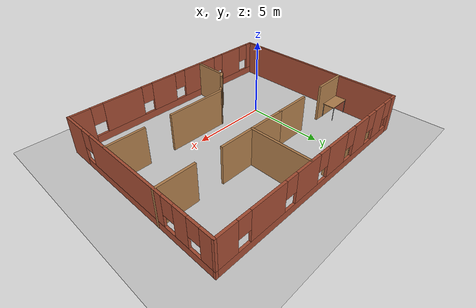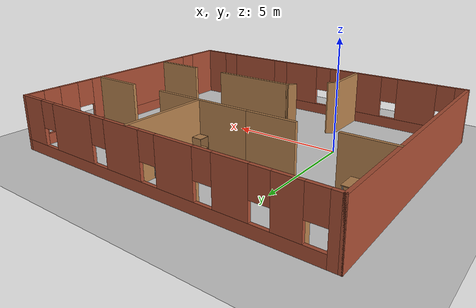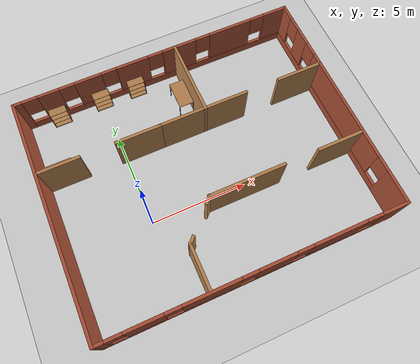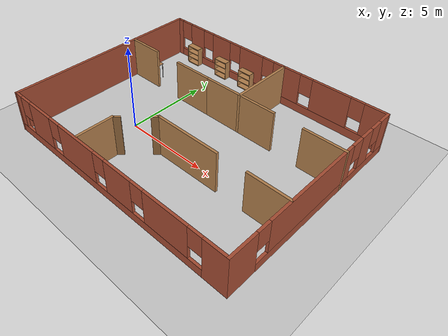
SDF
<sdf version="1.6">
 <world name="default">
  <model name="ground_plane">
   <static>1</static>
   <link name="link">
    <collision name="collision">
     <geometry><plane><normal>0 0 1</normal><size>100 100</size></plane></geometry>
     <surface><friction><ode><mu>100</mu><mu2>50</mu2></ode></friction></surface>
    </collision>
    <visual name="visual">
     <cast_shadows>0</cast_shadows>
     <geometry><plane><normal>0 0 1</normal><size>100 100</size></plane></geometry>
     <material>
      <script><uri>file://media/materials/scripts/gazebo.material</uri><name>Gazebo/Grey</name></script>
     </material>
    </visual>
   </link>
  </model>
  <model name="cabinet">
   <static>1</static>
   <link name="cabinet_bottom_plate">
    <inertial>
     <pose>0 0 -1 0 -0 0</pose>
     <inertia><ixx>2.05</ixx><ixy>0</ixy><ixz>0</ixz><iyy>2.05</iyy><iyz>0</iyz><izz>2.05</izz></inertia>
     <mass>25</mass>
    </inertial>
    <collision name="cabinet_bottom_plate_geom">
     <pose>0 0 0.01 0 -0 0</pose>
     <geometry><box><size>0.45 0.45 0.02</size></box></geometry>
    </collision>
    <visual name="cabinet_bottom_plate_geom_visual">
     <pose>0 0 0.01 0 -0 0</pose>
     <geometry><box><size>0.45 0.45 0.02</size></box></geometry>
     <material>
      <script><uri>file://media/materials/scripts/gazebo.material</uri><name>Gazebo/Wood</name></script>
     </material>
    </visual>
    <collision name="cabinet_bottom_plate_geom_cabinet_back_plate">
     <pose>0.235 0 0.51 0 -0 0</pose>
     <geometry><box><size>0.02 0.45 1.02</size></box></geometry>
    </collision>
    <visual name="cabinet_bottom_plate_geom_cabinet_back_plate_visual">
     <pose>0.235 0 0.51 0 -0 0</pose>
     <geometry><box><size>0.02 0.45 1.02</size></box></geometry>
     <material>
      <script><uri>file://media/materials/scripts/gazebo.material</uri><name>Gazebo/Wood</name></script>
     </material>
    </visual>
    <collision name="cabinet_bottom_plate_geom_cabinet_left_plate">
     <pose>0 0.235 0.51 0 -0 0</pose>
     <geometry><box><size>0.45 0.02 1.02</size></box></geometry>
    </collision>
    <visual name="cabinet_bottom_plate_geom_cabinet_left_plate_visual">
     <pose>0 0.235 0.51 0 -0 0</pose>
     <geometry><box><size>0.45 0.02 1.02</size></box></geometry>
     <material>
      <script><uri>file://media/materials/scripts/gazebo.material</uri><name>Gazebo/Wood</name></script>
     </material>
    </visual>
    <collision name="cabinet_bottom_plate_geom_cabinet_middle_plate">
     <pose>0 0 0.51 0 -0 0</pose>
     <geometry><box><size>0.45 0.45 0.02</size></box></geometry>
    </collision>
    <visual name="cabinet_bottom_plate_geom_cabinet_middle_plate_visual">
     <pose>0 0 0.51 0 -0 0</pose>
     <geometry><box><size>0.45 0.45 0.02</size></box></geometry>
     <material>
      <script><uri>file://media/materials/scripts/gazebo.material</uri><name>Gazebo/Wood</name></script>
     </material>
    </visual>
    <collision name="cabinet_bottom_plate_geom_cabinet_right_plate">
     <pose>0 -0.235 0.51 0 -0 0</pose>
     <geometry><box><size>0.45 0.02 1.02</size></box></geometry>
    </collision>
    <visual name="cabinet_bottom_plate_geom_cabinet_right_plate_visual">
     <pose>0 -0.235 0.51 0 -0 0</pose>
     <geometry><box><size>0.45 0.02 1.02</size></box></geometry>
     <material>
      <script><uri>file://media/materials/scripts/gazebo.material</uri><name>Gazebo/Wood</name></script>
     </material>
    </visual>
    <collision name="cabinet_bottom_plate_geom_cabinet_top_plate">
     <pose>0 0 1.01 0 -0 0</pose>
     <geometry><box><size>0.45 0.45 0.02</size></box></geometry>
    </collision>
    <visual name="cabinet_bottom_plate_geom_cabinet_top_plate_visual">
     <pose>0 0 1.01 0 -0 0</pose>
     <geometry><box><size>0.45 0.45 0.02</size></box></geometry>
     <material>
      <script><uri>file://media/materials/scripts/gazebo.material</uri><name>Gazebo/Wood</name></script>
     </material>
    </visual>
   </link>
   <pose>4.13941 3.99737 0 0 -0 0</pose>
  </model>
  <model name="table_1_clone_0">
   <static>1</static>
   <link name="link">
    <collision name="surface">
     <pose>0 0 1 0 -0 0</pose>
     <geometry><box><size>1.5 0.8 0.03</size></box></geometry>
     <surface><friction><ode><mu>0.6</mu><mu2>0.6</mu2></ode></friction></surface>
    </collision>
    <visual name="visual1">
     <pose>0 0 1 0 -0 0</pose>
     <geometry><box><size>1.5 0.8 0.03</size></box></geometry>
     <material>
      <script><uri>file://media/materials/scripts/gazebo.material</uri><name>Gazebo/Wood</name></script>
     </material>
    </visual>
    <collision name="front_left_leg">
     <pose>0.68 0.38 0.5 0 -0 0</pose>
     <geometry><cylinder><radius>0.02</radius><length>1</length></cylinder></geometry>
    </collision>
    <visual name="front_left_leg">
     <pose>0.68 0.38 0.5 0 -0 0</pose>
     <geometry><cylinder><radius>0.02</radius><length>1</length></cylinder></geometry>
     <material>
      <script><uri>file://media/materials/scripts/gazebo.material</uri><name>Gazebo/Grey</name></script>
     </material>
    </visual>
    <collision name="front_right_leg">
     <pose>0.68 -0.38 0.5 0 -0 0</pose>
     <geometry><cylinder><radius>0.02</radius><length>1</length></cylinder></geometry>
    </collision>
    <visual name="front_right_leg">
     <pose>0.68 -0.38 0.5 0 -0 0</pose>
     <geometry><cylinder><radius>0.02</radius><length>1</length></cylinder></geometry>
     <material>
      <script><uri>file://media/materials/scripts/gazebo.material</uri><name>Gazebo/Grey</name></script>
     </material>
    </visual>
    <collision name="back_right_leg">
     <pose>-0.68 -0.38 0.5 0 -0 0</pose>
     <geometry><cylinder><radius>0.02</radius><length>1</length></cylinder></geometry>
    </collision>
    <visual name="back_right_leg">
     <pose>-0.68 -0.38 0.5 0 -0 0</pose>
     <geometry><cylinder><radius>0.02</radius><length>1</length></cylinder></geometry>
     <material>
      <script><uri>file://media/materials/scripts/gazebo.material</uri><name>Gazebo/Grey</name></script>
     </material>
    </visual>
    <collision name="back_left_leg">
     <pose>-0.68 0.38 0.5 0 -0 0</pose>
     <geometry><cylinder><radius>0.02</radius><length>1</length></cylinder></geometry>
    </collision>
    <visual name="back_left_leg">
     <pose>-0.68 0.38 0.5 0 -0 0</pose>
     <geometry><cylinder><radius>0.02</radius><length>1</length></cylinder></geometry>
     <material>
      <script><uri>file://media/materials/scripts/gazebo.material</uri><name>Gazebo/Grey</name></script>
     </material>
    </visual>
   </link>
   <pose>-3.29722 4.13533 0 0 -0 0</pose>
  </model>
  <model name="bookshelf">
   <static>1</static>
   <link name="link">
    <inertial><mass>1</mass></inertial>
    <collision name="back">
     <pose>0 0.005 0.6 0 -0 0</pose>
     <geometry><box><size>0.9 0.01 1.2</size></box></geometry>
    </collision>
    <visual name="visual1">
     <pose>0 0.005 0.6 0 -0 0</pose>
     <geometry><box><size>0.9 0.01 1.2</size></box></geometry>
     <material>
      <script><uri>file://media/materials/scripts/gazebo.material</uri><name>Gazebo/Wood</name></script>
     </material>
    </visual>
    <collision name="left_side">
     <pose>0.45 -0.195 0.6 0 -0 0</pose>
     <geometry><box><size>0.02 0.4 1.2</size></box></geometry>
    </collision>
    <visual name="visual2">
     <pose>0.45 -0.195 0.6 0 -0 0</pose>
     <geometry><box><size>0.02 0.4 1.2</size></box></geometry>
     <material>
      <script><uri>file://media/materials/scripts/gazebo.material</uri><name>Gazebo/Wood</name></script>
     </material>
    </visual>
    <collision name="right_side">
     <pose>-0.45 -0.195 0.6 0 -0 0</pose>
     <geometry><box><size>0.02 0.4 1.2</size></box></geometry>
    </collision>
    <visual name="visual3">
     <pose>-0.45 -0.195 0.6 0 -0 0</pose>
     <geometry><box><size>0.02 0.4 1.2</size></box></geometry>
     <material>
      <script><uri>file://media/materials/scripts/gazebo.material</uri><name>Gazebo/Wood</name></script>
     </material>
    </visual>
    <collision name="bottom">
     <pose>0 -0.195 0.03 0 -0 0</pose>
     <geometry><box><size>0.88 0.4 0.06</size></box></geometry>
    </collision>
    <visual name="visual4">
     <pose>0 -0.195 0.03 0 -0 0</pose>
     <geometry><box><size>0.88 0.4 0.06</size></box></geometry>
     <material>
      <script><uri>file://media/materials/scripts/gazebo.material</uri><name>Gazebo/Wood</name></script>
     </material>
    </visual>
    <collision name="top">
     <pose>0 -0.195 1.19 0 -0 0</pose>
     <geometry><box><size>0.88 0.4 0.02</size></box></geometry>
    </collision>
    <visual name="visual5">
     <pose>0 -0.195 1.19 0 -0 0</pose>
     <geometry><box><size>0.88 0.4 0.02</size></box></geometry>
     <material>
      <script><uri>file://media/materials/scripts/gazebo.material</uri><name>Gazebo/Wood</name></script>
     </material>
    </visual>
    <collision name="low_shelf">
     <pose>0 -0.195 0.43 0 -0 0</pose>
     <geometry><box><size>0.88 0.4 0.02</size></box></geometry>
    </collision>
    <visual name="visual6">
     <pose>0 -0.195 0.43 0 -0 0</pose>
     <geometry><box><size>0.88 0.4 0.02</size></box></geometry>
     <material>
      <script><uri>file://media/materials/scripts/gazebo.material</uri><name>Gazebo/Wood</name></script>
     </material>
    </visual>
    <collision name="high_shelf">
     <pose>0 -0.195 0.8 0 -0 0</pose>
     <geometry><box><size>0.88 0.4 0.02</size></box></geometry>
    </collision>
    <visual name="visual7">
     <pose>0 -0.195 0.8 0 -0 0</pose>
     <geometry><box><size>0.88 0.4 0.02</size></box></geometry>
     <material>
      <script><uri>file://media/materials/scripts/gazebo.material</uri><name>Gazebo/Wood</name></script>
     </material>
    </visual>
   </link>
   <pose>1.95532 7.44625 0 0 -0 0</pose>
  </model>
  <model name="bookshelf_0">
   <static>1</static>
   <link name="link">
    <inertial><mass>1</mass></inertial>
    <collision name="back">
     <pose>0 0.005 0.6 0 -0 0</pose>
     <geometry><box><size>0.9 0.01 1.2</size></box></geometry>
    </collision>
    <visual name="visual1">
     <pose>0 0.005 0.6 0 -0 0</pose>
     <geometry><box><size>0.9 0.01 1.2</size></box></geometry>
     <material>
      <script><uri>file://media/materials/scripts/gazebo.material</uri><name>Gazebo/Wood</name></script>
     </material>
    </visual>
    <collision name="left_side">
     <pose>0.45 -0.195 0.6 0 -0 0</pose>
     <geometry><box><size>0.02 0.4 1.2</size></box></geometry>
    </collision>
    <visual name="visual2">
     <pose>0.45 -0.195 0.6 0 -0 0</pose>
     <geometry><box><size>0.02 0.4 1.2</size></box></geometry>
     <material>
      <script><uri>file://media/materials/scripts/gazebo.material</uri><name>Gazebo/Wood</name></script>
     </material>
    </visual>
    <collision name="right_side">
     <pose>-0.45 -0.195 0.6 0 -0 0</pose>
     <geometry><box><size>0.02 0.4 1.2</size></box></geometry>
    </collision>
    <visual name="visual3">
     <pose>-0.45 -0.195 0.6 0 -0 0</pose>
     <geometry><box><size>0.02 0.4 1.2</size></box></geometry>
     <material>
      <script><uri>file://media/materials/scripts/gazebo.material</uri><name>Gazebo/Wood</name></script>
     </material>
    </visual>
    <collision name="bottom">
     <pose>0 -0.195 0.03 0 -0 0</pose>
     <geometry><box><size>0.88 0.4 0.06</size></box></geometry>
    </collision>
    <visual name="visual4">
     <pose>0 -0.195 0.03 0 -0 0</pose>
     <geometry><box><size>0.88 0.4 0.06</size></box></geometry>
     <material>
      <script><uri>file://media/materials/scripts/gazebo.material</uri><name>Gazebo/Wood</name></script>
     </material>
    </visual>
    <collision name="top">
     <pose>0 -0.195 1.19 0 -0 0</pose>
     <geometry><box><size>0.88 0.4 0.02</size></box></geometry>
    </collision>
    <visual name="visual5">
     <pose>0 -0.195 1.19 0 -0 0</pose>
     <geometry><box><size>0.88 0.4 0.02</size></box></geometry>
     <material>
      <script><uri>file://media/materials/scripts/gazebo.material</uri><name>Gazebo/Wood</name></script>
     </material>
    </visual>
    <collision name="low_shelf">
     <pose>0 -0.195 0.43 0 -0 0</pose>
     <geometry><box><size>0.88 0.4 0.02</size></box></geometry>
    </collision>
    <visual name="visual6">
     <pose>0 -0.195 0.43 0 -0 0</pose>
     <geometry><box><size>0.88 0.4 0.02</size></box></geometry>
     <material>
      <script><uri>file://media/materials/scripts/gazebo.material</uri><name>Gazebo/Wood</name></script>
     </material>
    </visual>
    <collision name="high_shelf">
     <pose>0 -0.195 0.8 0 -0 0</pose>
     <geometry><box><size>0.88 0.4 0.02</size></box></geometry>
    </collision>
    <visual name="visual7">
     <pose>0 -0.195 0.8 0 -0 0</pose>
     <geometry><box><size>0.88 0.4 0.02</size></box></geometry>
     <material>
      <script><uri>file://media/materials/scripts/gazebo.material</uri><name>Gazebo/Wood</name></script>
     </material>
    </visual>
   </link>
   <pose>-2.36809 7.42692 0 0 -0 0</pose>
  </model>
  <model name="bookshelf_1">
   <static>1</static>
   <link name="link">
    <inertial><mass>1</mass></inertial>
    <collision name="back">
     <pose>0 0.005 0.6 0 -0 0</pose>
     <geometry><box><size>0.9 0.01 1.2</size></box></geometry>
    </collision>
    <visual name="visual1">
     <pose>0 0.005 0.6 0 -0 0</pose>
     <geometry><box><size>0.9 0.01 1.2</size></box></geometry>
     <material>
      <script><uri>file://media/materials/scripts/gazebo.material</uri><name>Gazebo/Wood</name></script>
     </material>
    </visual>
    <collision name="left_side">
     <pose>0.45 -0.195 0.6 0 -0 0</pose>
     <geometry><box><size>0.02 0.4 1.2</size></box></geometry>
    </collision>
    <visual name="visual2">
     <pose>0.45 -0.195 0.6 0 -0 0</pose>
     <geometry><box><size>0.02 0.4 1.2</size></box></geometry>
     <material>
      <script><uri>file://media/materials/scripts/gazebo.material</uri><name>Gazebo/Wood</name></script>
     </material>
    </visual>
    <collision name="right_side">
     <pose>-0.45 -0.195 0.6 0 -0 0</pose>
     <geometry><box><size>0.02 0.4 1.2</size></box></geometry>
    </collision>
    <visual name="visual3">
     <pose>-0.45 -0.195 0.6 0 -0 0</pose>
     <geometry><box><size>0.02 0.4 1.2</size></box></geometry>
     <material>
      <script><uri>file://media/materials/scripts/gazebo.material</uri><name>Gazebo/Wood</name></script>
     </material>
    </visual>
    <collision name="bottom">
     <pose>0 -0.195 0.03 0 -0 0</pose>
     <geometry><box><size>0.88 0.4 0.06</size></box></geometry>
    </collision>
    <visual name="visual4">
     <pose>0 -0.195 0.03 0 -0 0</pose>
     <geometry><box><size>0.88 0.4 0.06</size></box></geometry>
     <material>
      <script><uri>file://media/materials/scripts/gazebo.material</uri><name>Gazebo/Wood</name></script>
     </material>
    </visual>
    <collision name="top">
     <pose>0 -0.195 1.19 0 -0 0</pose>
     <geometry><box><size>0.88 0.4 0.02</size></box></geometry>
    </collision>
    <visual name="visual5">
     <pose>0 -0.195 1.19 0 -0 0</pose>
     <geometry><box><size>0.88 0.4 0.02</size></box></geometry>
     <material>
      <script><uri>file://media/materials/scripts/gazebo.material</uri><name>Gazebo/Wood</name></script>
     </material>
    </visual>
    <collision name="low_shelf">
     <pose>0 -0.195 0.43 0 -0 0</pose>
     <geometry><box><size>0.88 0.4 0.02</size></box></geometry>
    </collision>
    <visual name="visual6">
     <pose>0 -0.195 0.43 0 -0 0</pose>
     <geometry><box><size>0.88 0.4 0.02</size></box></geometry>
     <material>
      <script><uri>file://media/materials/scripts/gazebo.material</uri><name>Gazebo/Wood</name></script>
     </material>
    </visual>
    <collision name="high_shelf">
     <pose>0 -0.195 0.8 0 -0 0</pose>
     <geometry><box><size>0.88 0.4 0.02</size></box></geometry>
    </collision>
    <visual name="visual7">
     <pose>0 -0.195 0.8 0 -0 0</pose>
     <geometry><box><size>0.88 0.4 0.02</size></box></geometry>
     <material>
      <script><uri>file://media/materials/scripts/gazebo.material</uri><name>Gazebo/Wood</name></script>
     </material>
    </visual>
   </link>
   <pose>0.00866 7.44855 0 0 -0 0</pose>
  </model>
  <model name="table_2">
   <static>1</static>
   <link name="link">
    <collision name="surface">
     <pose>0 0 1 0 -0 0</pose>
     <geometry><box><size>1.5 0.8 0.03</size></box></geometry>
     <surface><friction><ode><mu>0.6</mu><mu2>0.6</mu2></ode></friction></surface>
    </collision>
    <visual name="visual1">
     <pose>0 0 1 0 -0 0</pose>
     <geometry><box><size>1.5 0.8 0.03</size></box></geometry>
     <material>
      <script><uri>file://media/materials/scripts/gazebo.material</uri><name>Gazebo/Wood</name></script>
     </material>
    </visual>
    <collision name="front_left_leg">
     <pose>0.68 0.38 0.5 0 -0 0</pose>
     <geometry><cylinder><radius>0.02</radius><length>1</length></cylinder></geometry>
    </collision>
    <visual name="front_left_leg">
     <pose>0.68 0.38 0.5 0 -0 0</pose>
     <geometry><cylinder><radius>0.02</radius><length>1</length></cylinder></geometry>
     <material>
      <script><uri>file://media/materials/scripts/gazebo.material</uri><name>Gazebo/Grey</name></script>
     </material>
    </visual>
    <collision name="front_right_leg">
     <pose>0.68 -0.38 0.5 0 -0 0</pose>
     <geometry><cylinder><radius>0.02</radius><length>1</length></cylinder></geometry>
    </collision>
    <visual name="front_right_leg">
     <pose>0.68 -0.38 0.5 0 -0 0</pose>
     <geometry><cylinder><radius>0.02</radius><length>1</length></cylinder></geometry>
     <material>
      <script><uri>file://media/materials/scripts/gazebo.material</uri><name>Gazebo/Grey</name></script>
     </material>
    </visual>
    <collision name="back_right_leg">
     <pose>-0.68 -0.38 0.5 0 -0 0</pose>
     <geometry><cylinder><radius>0.02</radius><length>1</length></cylinder></geometry>
    </collision>
    <visual name="back_right_leg">
     <pose>-0.68 -0.38 0.5 0 -0 0</pose>
     <geometry><cylinder><radius>0.02</radius><length>1</length></cylinder></geometry>
     <material>
      <script><uri>file://media/materials/scripts/gazebo.material</uri><name>Gazebo/Grey</name></script>
     </material>
    </visual>
    <collision name="back_left_leg">
     <pose>-0.68 0.38 0.5 0 -0 0</pose>
     <geometry><cylinder><radius>0.02</radius><length>1</length></cylinder></geometry>
    </collision>
    <visual name="back_left_leg">
     <pose>-0.68 0.38 0.5 0 -0 0</pose>
     <geometry><cylinder><radius>0.02</radius><length>1</length></cylinder></geometry>
     <material>
      <script><uri>file://media/materials/scripts/gazebo.material</uri><name>Gazebo/Grey</name></script>
     </material>
    </visual>
   </link>
   <pose>3.97863 5.70643 0 0 0 -1.57312</pose>
  </model>
  <model name="friendly_office_0">
   <pose>3.35258 1.55482 0 0 -0 0</pose>
   <link name="Wall_58">
    <pose>7.49817 0 0 0 -0 1.5708</pose>
    <visual name="Wall_58_Visual_0">
     <pose>-5.21559 0 1.25 0 -0 0</pose>
     <geometry><box><size>1.71883 0.15 2.5</size></box></geometry>
     <material>
      <script><uri>file://media/materials/scripts/gazebo.material</uri><name>Gazebo/Bricks</name></script>
      <ambient>1 1 1 1</ambient>
     </material>
     <meta><layer>0</layer></meta>
    </visual>
    <collision name="Wall_58_Collision_0">
     <geometry><box><size>1.71883 0.15 2.5</size></box></geometry>
     <pose>-5.21559 0 1.25 0 -0 0</pose>
    </collision>
    <visual name="Wall_58_Visual_1">
     <pose>0.859412 0 0.25 0 -0 0</pose>
     <geometry><box><size>10.4312 0.15 0.5</size></box></geometry>
     <material>
      <script><uri>file://media/materials/scripts/gazebo.material</uri><name>Gazebo/Bricks</name></script>
      <ambient>1 1 1 1</ambient>
     </material>
     <meta><layer>0</layer></meta>
    </visual>
    <collision name="Wall_58_Collision_1">
     <geometry><box><size>10.4312 0.15 0.5</size></box></geometry>
     <pose>0.859412 0 0.25 0 -0 0</pose>
    </collision>
    <visual name="Wall_58_Visual_2">
     <pose>-0.445313 0 1.5 0 -0 0</pose>
     <geometry><box><size>6.22173 0.15 2</size></box></geometry>
     <material>
      <script><uri>file://media/materials/scripts/gazebo.material</uri><name>Gazebo/Bricks</name></script>
      <ambient>1 1 1 1</ambient>
     </material>
     <meta><layer>0</layer></meta>
    </visual>
    <collision name="Wall_58_Collision_2">
     <geometry><box><size>6.22173 0.15 2</size></box></geometry>
     <pose>-0.445313 0 1.5 0 -0 0</pose>
    </collision>
    <visual name="Wall_58_Visual_3">
     <pose>3.92645 0 1.5 0 -0 0</pose>
     <geometry><box><size>0.921802 0.15 2</size></box></geometry>
     <material>
      <script><uri>file://media/materials/scripts/gazebo.material</uri><name>Gazebo/Bricks</name></script>
      <ambient>1 1 1 1</ambient>
     </material>
     <meta><layer>0</layer></meta>
    </visual>
    <collision name="Wall_58_Collision_3">
     <geometry><box><size>0.921802 0.15 2</size></box></geometry>
     <pose>3.92645 0 1.5 0 -0 0</pose>
    </collision>
    <visual name="Wall_58_Visual_4">
     <pose>5.63118 0 1.5 0 -0 0</pose>
     <geometry><box><size>0.887648 0.15 2</size></box></geometry>
     <material>
      <script><uri>file://media/materials/scripts/gazebo.material</uri><name>Gazebo/Bricks</name></script>
      <ambient>1 1 1 1</ambient>
     </material>
     <meta><layer>0</layer></meta>
    </visual>
    <collision name="Wall_58_Collision_4">
     <geometry><box><size>0.887648 0.15 2</size></box></geometry>
     <pose>5.63118 0 1.5 0 -0 0</pose>
    </collision>
    <visual name="Wall_58_Visual_5">
     <pose>-3.95617 0 1.9 0 -0 0</pose>
     <geometry><box><size>0.8 0.15 1.2</size></box></geometry>
     <material>
      <script><uri>file://media/materials/scripts/gazebo.material</uri><name>Gazebo/Bricks</name></script>
      <ambient>1 1 1 1</ambient>
     </material>
     <meta><layer>0</layer></meta>
    </visual>
    <collision name="Wall_58_Collision_5">
     <geometry><box><size>0.8 0.15 1.2</size></box></geometry>
     <pose>-3.95617 0 1.9 0 -0 0</pose>
    </collision>
    <visual name="Wall_58_Visual_6">
     <pose>3.06555 0 1.9 0 -0 0</pose>
     <geometry><box><size>0.8 0.15 1.2</size></box></geometry>
     <material>
      <script><uri>file://media/materials/scripts/gazebo.material</uri><name>Gazebo/Bricks</name></script>
      <ambient>1 1 1 1</ambient>
     </material>
     <meta><layer>0</layer></meta>
    </visual>
    <collision name="Wall_58_Collision_6">
     <geometry><box><size>0.8 0.15 1.2</size></box></geometry>
     <pose>3.06555 0 1.9 0 -0 0</pose>
    </collision>
    <visual name="Wall_58_Visual_7">
     <pose>4.78735 0 1.9 0 -0 0</pose>
     <geometry><box><size>0.8 0.15 1.2</size></box></geometry>
     <material>
      <script><uri>file://media/materials/scripts/gazebo.material</uri><name>Gazebo/Bricks</name></script>
      <ambient>1 1 1 1</ambient>
     </material>
     <meta><layer>0</layer></meta>
    </visual>
    <collision name="Wall_58_Collision_7">
     <geometry><box><size>0.8 0.15 1.2</size></box></geometry>
     <pose>4.78735 0 1.9 0 -0 0</pose>
    </collision>
   </link>
   <link name="Wall_60">
    <pose>-0.001831 -6 0 0 -0 3.14159</pose>
    <visual name="Wall_60_Visual_0">
     <pose>-6.87725 0 1.25 0 -0 0</pose>
     <geometry><box><size>1.39549 0.15 2.5</size></box></geometry>
     <material>
      <script><uri>file://media/materials/scripts/gazebo.material</uri><name>Gazebo/Bricks</name></script>
      <ambient>1 1 1 1</ambient>
     </material>
     <meta><layer>0</layer></meta>
    </visual>
    <collision name="Wall_60_Collision_0">
     <geometry><box><size>1.39549 0.15 2.5</size></box></geometry>
     <pose>-6.87725 0 1.25 0 -0 0</pose>
    </collision>
    <visual name="Wall_60_Visual_1">
     <pose>0.697747 0 0.25 0 -0 0</pose>
     <geometry><box><size>13.7545 0.15 0.5</size></box></geometry>
     <material>
      <script><uri>file://media/materials/scripts/gazebo.material</uri><name>Gazebo/Bricks</name></script>
      <ambient>1 1 1 1</ambient>
     </material>
     <meta><layer>0</layer></meta>
    </visual>
    <collision name="Wall_60_Collision_1">
     <geometry><box><size>13.7545 0.15 0.5</size></box></geometry>
     <pose>0.697747 0 0.25 0 -0 0</pose>
    </collision>
    <visual name="Wall_60_Visual_2">
     <pose>-4.0308 0 1.5 0 -0 0</pose>
     <geometry><box><size>2.69741 0.15 2</size></box></geometry>
     <material>
      <script><uri>file://media/materials/scripts/gazebo.material</uri><name>Gazebo/Bricks</name></script>
      <ambient>1 1 1 1</ambient>
     </material>
     <meta><layer>0</layer></meta>
    </visual>
    <collision name="Wall_60_Collision_2">
     <geometry><box><size>2.69741 0.15 2</size></box></geometry>
     <pose>-4.0308 0 1.5 0 -0 0</pose>
    </collision>
    <visual name="Wall_60_Visual_3">
     <pose>-0.950389 0 1.5 0 -0 0</pose>
     <geometry><box><size>1.86341 0.15 2</size></box></geometry>
     <material>
      <script><uri>file://media/materials/scripts/gazebo.material</uri><name>Gazebo/Bricks</name></script>
      <ambient>1 1 1 1</ambient>
     </material>
     <meta><layer>0</layer></meta>
    </visual>
    <collision name="Wall_60_Collision_3">
     <geometry><box><size>1.86341 0.15 2</size></box></geometry>
     <pose>-0.950389 0 1.5 0 -0 0</pose>
    </collision>
    <visual name="Wall_60_Visual_4">
     <pose>2.17038 0 1.5 0 -0 0</pose>
     <geometry><box><size>2.77812 0.15 2</size></box></geometry>
     <material>
      <script><uri>file://media/materials/scripts/gazebo.material</uri><name>Gazebo/Bricks</name></script>
      <ambient>1 1 1 1</ambient>
     </material>
     <meta><layer>0</layer></meta>
    </visual>
    <collision name="Wall_60_Collision_4">
     <geometry><box><size>2.77812 0.15 2</size></box></geometry>
     <pose>2.17038 0 1.5 0 -0 0</pose>
    </collision>
    <visual name="Wall_60_Visual_5">
     <pose>5.27769 0 1.5 0 -0 0</pose>
     <geometry><box><size>1.83651 0.15 2</size></box></geometry>
     <material>
      <script><uri>file://media/materials/scripts/gazebo.material</uri><name>Gazebo/Bricks</name></script>
      <ambient>1 1 1 1</ambient>
     </material>
     <meta><layer>0</layer></meta>
    </visual>
    <collision name="Wall_60_Collision_5">
     <geometry><box><size>1.83651 0.15 2</size></box></geometry>
     <pose>5.27769 0 1.5 0 -0 0</pose>
    </collision>
    <visual name="Wall_60_Visual_6">
     <pose>7.28547 0 1.5 0 -0 0</pose>
     <geometry><box><size>0.579053 0.15 2</size></box></geometry>
     <material>
      <script><uri>file://media/materials/scripts/gazebo.material</uri><name>Gazebo/Bricks</name></script>
      <ambient>1 1 1 1</ambient>
     </material>
     <meta><layer>0</layer></meta>
    </visual>
    <collision name="Wall_60_Collision_6">
     <geometry><box><size>0.579053 0.15 2</size></box></geometry>
     <pose>7.28547 0 1.5 0 -0 0</pose>
    </collision>
    <visual name="Wall_60_Visual_7">
     <pose>-5.77951 0 1.9 0 -0 0</pose>
     <geometry><box><size>0.8 0.15 1.2</size></box></geometry>
     <material>
      <script><uri>file://media/materials/scripts/gazebo.material</uri><name>Gazebo/Bricks</name></script>
      <ambient>1 1 1 1</ambient>
     </material>
     <meta><layer>0</layer></meta>
    </visual>
    <collision name="Wall_60_Collision_7">
     <geometry><box><size>0.8 0.15 1.2</size></box></geometry>
     <pose>-5.77951 0 1.9 0 -0 0</pose>
    </collision>
    <visual name="Wall_60_Visual_8">
     <pose>-2.28209 0 1.9 0 -0 0</pose>
     <geometry><box><size>0.8 0.15 1.2</size></box></geometry>
     <material>
      <script><uri>file://media/materials/scripts/gazebo.material</uri><name>Gazebo/Bricks</name></script>
      <ambient>1 1 1 1</ambient>
     </material>
     <meta><layer>0</layer></meta>
    </visual>
    <collision name="Wall_60_Collision_8">
     <geometry><box><size>0.8 0.15 1.2</size></box></geometry>
     <pose>-2.28209 0 1.9 0 -0 0</pose>
    </collision>
    <visual name="Wall_60_Visual_9">
     <pose>0.381317 0 1.9 0 -0 0</pose>
     <geometry><box><size>0.8 0.15 1.2</size></box></geometry>
     <material>
      <script><uri>file://media/materials/scripts/gazebo.material</uri><name>Gazebo/Bricks</name></script>
      <ambient>1 1 1 1</ambient>
     </material>
     <meta><layer>0</layer></meta>
    </visual>
    <collision name="Wall_60_Collision_9">
     <geometry><box><size>0.8 0.15 1.2</size></box></geometry>
     <pose>0.381317 0 1.9 0 -0 0</pose>
    </collision>
    <visual name="Wall_60_Visual_10">
     <pose>3.95944 0 1.9 0 -0 0</pose>
     <geometry><box><size>0.8 0.15 1.2</size></box></geometry>
     <material>
      <script><uri>file://media/materials/scripts/gazebo.material</uri><name>Gazebo/Bricks</name></script>
      <ambient>1 1 1 1</ambient>
     </material>
     <meta><layer>0</layer></meta>
    </visual>
    <collision name="Wall_60_Collision_10">
     <geometry><box><size>0.8 0.15 1.2</size></box></geometry>
     <pose>3.95944 0 1.9 0 -0 0</pose>
    </collision>
    <visual name="Wall_60_Visual_11">
     <pose>6.59595 0 1.9 0 -0 0</pose>
     <geometry><box><size>0.8 0.15 1.2</size></box></geometry>
     <material>
      <script><uri>file://media/materials/scripts/gazebo.material</uri><name>Gazebo/Bricks</name></script>
      <ambient>1 1 1 1</ambient>
     </material>
     <meta><layer>0</layer></meta>
    </visual>
    <collision name="Wall_60_Collision_11">
     <geometry><box><size>0.8 0.15 1.2</size></box></geometry>
     <pose>6.59595 0 1.9 0 -0 0</pose>
    </collision>
   </link>
   <link name="Wall_63">
    <collision name="Wall_63_Collision">
     <geometry><box><size>12.15 0.15 2.5</size></box></geometry>
     <pose>0 0 1.25 0 -0 0</pose>
    </collision>
    <visual name="Wall_63_Visual">
     <pose>0 0 1.25 0 -0 0</pose>
     <geometry><box><size>12.15 0.15 2.5</size></box></geometry>
     <material>
      <script><uri>file://media/materials/scripts/gazebo.material</uri><name>Gazebo/Bricks</name></script>
      <ambient>1 1 1 1</ambient>
     </material>
     <meta><layer>0</layer></meta>
    </visual>
    <pose>-7.50183 0 0 0 -0 1.5708</pose>
   </link>
   <link name="Wall_65">
    <pose>-0.001831 6 0 0 -0 0</pose>
    <visual name="Wall_65_Visual_0">
     <pose>-7.32583 0 1.25 0 -0 0</pose>
     <geometry><box><size>0.498343 0.15 2.5</size></box></geometry>
     <material>
      <script><uri>file://media/materials/scripts/gazebo.material</uri><name>Gazebo/Bricks</name></script>
      <ambient>1 1 1 1</ambient>
     </material>
     <meta><layer>0</layer></meta>
    </visual>
    <collision name="Wall_65_Collision_0">
     <geometry><box><size>0.498343 0.15 2.5</size></box></geometry>
     <pose>-7.32583 0 1.25 0 -0 0</pose>
    </collision>
    <visual name="Wall_65_Visual_1">
     <pose>0.249172 0 0.25 0 -0 0</pose>
     <geometry><box><size>14.6517 0.15 0.5</size></box></geometry>
     <material>
      <script><uri>file://media/materials/scripts/gazebo.material</uri><name>Gazebo/Bricks</name></script>
      <ambient>1 1 1 1</ambient>
     </material>
     <meta><layer>0</layer></meta>
    </visual>
    <collision name="Wall_65_Collision_1">
     <geometry><box><size>14.6517 0.15 0.5</size></box></geometry>
     <pose>0.249172 0 0.25 0 -0 0</pose>
    </collision>
    <visual name="Wall_65_Visual_2">
     <pose>-5.72159 0 1.5 0 -0 0</pose>
     <geometry><box><size>1.11012 0.15 2</size></box></geometry>
     <material>
      <script><uri>file://media/materials/scripts/gazebo.material</uri><name>Gazebo/Bricks</name></script>
      <ambient>1 1 1 1</ambient>
     </material>
     <meta><layer>0</layer></meta>
    </visual>
    <collision name="Wall_65_Collision_2">
     <geometry><box><size>1.11012 0.15 2</size></box></geometry>
     <pose>-5.72159 0 1.5 0 -0 0</pose>
    </collision>
    <visual name="Wall_65_Visual_3">
     <pose>-3.65005 0 1.5 0 -0 0</pose>
     <geometry><box><size>1.43296 0.15 2</size></box></geometry>
     <material>
      <script><uri>file://media/materials/scripts/gazebo.material</uri><name>Gazebo/Bricks</name></script>
      <ambient>1 1 1 1</ambient>
     </material>
     <meta><layer>0</layer></meta>
    </visual>
    <collision name="Wall_65_Collision_3">
     <geometry><box><size>1.43296 0.15 2</size></box></geometry>
     <pose>-3.65005 0 1.5 0 -0 0</pose>
    </collision>
    <visual name="Wall_65_Visual_4">
     <pose>-1.26912 0 1.5 0 -0 0</pose>
     <geometry><box><size>1.7289 0.15 2</size></box></geometry>
     <material>
      <script><uri>file://media/materials/scripts/gazebo.material</uri><name>Gazebo/Bricks</name></script>
      <ambient>1 1 1 1</ambient>
     </material>
     <meta><layer>0</layer></meta>
    </visual>
    <collision name="Wall_65_Collision_4">
     <geometry><box><size>1.7289 0.15 2</size></box></geometry>
     <pose>-1.26912 0 1.5 0 -0 0</pose>
    </collision>
    <visual name="Wall_65_Visual_5">
     <pose>1.32703 0 1.5 0 -0 0</pose>
     <geometry><box><size>1.86341 0.15 2</size></box></geometry>
     <material>
      <script><uri>file://media/materials/scripts/gazebo.material</uri><name>Gazebo/Bricks</name></script>
      <ambient>1 1 1 1</ambient>
     </material>
     <meta><layer>0</layer></meta>
    </visual>
    <collision name="Wall_65_Collision_5">
     <geometry><box><size>1.86341 0.15 2</size></box></geometry>
     <pose>1.32703 0 1.5 0 -0 0</pose>
    </collision>
    <visual name="Wall_65_Visual_6">
     <pose>4.24603 0 1.5 0 -0 0</pose>
     <geometry><box><size>2.37457 0.15 2</size></box></geometry>
     <material>
      <script><uri>file://media/materials/scripts/gazebo.material</uri><name>Gazebo/Bricks</name></script>
      <ambient>1 1 1 1</ambient>
     </material>
     <meta><layer>0</layer></meta>
    </visual>
    <collision name="Wall_65_Collision_6">
     <geometry><box><size>2.37457 0.15 2</size></box></geometry>
     <pose>4.24603 0 1.5 0 -0 0</pose>
    </collision>
    <visual name="Wall_65_Visual_7">
     <pose>6.90416 0 1.5 0 -0 0</pose>
     <geometry><box><size>1.34169 0.15 2</size></box></geometry>
     <material>
      <script><uri>file://media/materials/scripts/gazebo.material</uri><name>Gazebo/Bricks</name></script>
      <ambient>1 1 1 1</ambient>
     </material>
     <meta><layer>0</layer></meta>
    </visual>
    <collision name="Wall_65_Collision_7">
     <geometry><box><size>1.34169 0.15 2</size></box></geometry>
     <pose>6.90416 0 1.5 0 -0 0</pose>
    </collision>
    <visual name="Wall_65_Visual_8">
     <pose>-6.67666 0 1.9 0 -0 0</pose>
     <geometry><box><size>0.8 0.15 1.2</size></box></geometry>
     <material>
      <script><uri>file://media/materials/scripts/gazebo.material</uri><name>Gazebo/Bricks</name></script>
      <ambient>1 1 1 1</ambient>
     </material>
     <meta><layer>0</layer></meta>
    </visual>
    <collision name="Wall_65_Collision_8">
     <geometry><box><size>0.8 0.15 1.2</size></box></geometry>
     <pose>-6.67666 0 1.9 0 -0 0</pose>
    </collision>
    <visual name="Wall_65_Visual_9">
     <pose>-4.76653 0 1.9 0 -0 0</pose>
     <geometry><box><size>0.8 0.15 1.2</size></box></geometry>
     <material>
      <script><uri>file://media/materials/scripts/gazebo.material</uri><name>Gazebo/Bricks</name></script>
      <ambient>1 1 1 1</ambient>
     </material>
     <meta><layer>0</layer></meta>
    </visual>
    <collision name="Wall_65_Collision_9">
     <geometry><box><size>0.8 0.15 1.2</size></box></geometry>
     <pose>-4.76653 0 1.9 0 -0 0</pose>
    </collision>
    <visual name="Wall_65_Visual_10">
     <pose>-2.53357 0 1.9 0 -0 0</pose>
     <geometry><box><size>0.8 0.15 1.2</size></box></geometry>
     <material>
      <script><uri>file://media/materials/scripts/gazebo.material</uri><name>Gazebo/Bricks</name></script>
      <ambient>1 1 1 1</ambient>
     </material>
     <meta><layer>0</layer></meta>
    </visual>
    <collision name="Wall_65_Collision_10">
     <geometry><box><size>0.8 0.15 1.2</size></box></geometry>
     <pose>-2.53357 0 1.9 0 -0 0</pose>
    </collision>
    <visual name="Wall_65_Visual_11">
     <pose>-0.004673 0 1.9 0 -0 0</pose>
     <geometry><box><size>0.8 0.15 1.2</size></box></geometry>
     <material>
      <script><uri>file://media/materials/scripts/gazebo.material</uri><name>Gazebo/Bricks</name></script>
      <ambient>1 1 1 1</ambient>
     </material>
     <meta><layer>0</layer></meta>
    </visual>
    <collision name="Wall_65_Collision_11">
     <geometry><box><size>0.8 0.15 1.2</size></box></geometry>
     <pose>-0.004673 0 1.9 0 -0 0</pose>
    </collision>
    <visual name="Wall_65_Visual_12">
     <pose>2.65874 0 1.9 0 -0 0</pose>
     <geometry><box><size>0.8 0.15 1.2</size></box></geometry>
     <material>
      <script><uri>file://media/materials/scripts/gazebo.material</uri><name>Gazebo/Bricks</name></script>
      <ambient>1 1 1 1</ambient>
     </material>
     <meta><layer>0</layer></meta>
    </visual>
    <collision name="Wall_65_Collision_12">
     <geometry><box><size>0.8 0.15 1.2</size></box></geometry>
     <pose>2.65874 0 1.9 0 -0 0</pose>
    </collision>
    <visual name="Wall_65_Visual_13">
     <pose>5.83331 0 1.9 0 -0 0</pose>
     <geometry><box><size>0.8 0.15 1.2</size></box></geometry>
     <material>
      <script><uri>file://media/materials/scripts/gazebo.material</uri><name>Gazebo/Bricks</name></script>
      <ambient>1 1 1 1</ambient>
     </material>
     <meta><layer>0</layer></meta>
    </visual>
    <collision name="Wall_65_Collision_13">
     <geometry><box><size>0.8 0.15 1.2</size></box></geometry>
     <pose>5.83331 0 1.9 0 -0 0</pose>
    </collision>
   </link>
   <link name="Wall_71">
    <collision name="Wall_71_Collision">
     <geometry><box><size>2.5 0.15 2.5</size></box></geometry>
     <pose>0 0 1.25 0 -0 0</pose>
    </collision>
    <visual name="Wall_71_Visual">
     <pose>0 0 1.25 0 -0 0</pose>
     <geometry><box><size>2.5 0.15 2.5</size></box></geometry>
     <material>
      <script><uri>file://media/materials/scripts/gazebo.material</uri><name>Gazebo/Wood</name></script>
      <ambient>1 1 1 1</ambient>
     </material>
     <meta><layer>0</layer></meta>
    </visual>
    <pose>6.32683 2.09985 0 0 -0 3.14159</pose>
   </link>
   <link name="Wall_76">
    <collision name="Wall_76_Collision">
     <geometry><box><size>2.25 0.15 2.5</size></box></geometry>
     <pose>0 0 1.25 0 -0 0</pose>
    </collision>
    <visual name="Wall_76_Visual">
     <pose>0 0 1.25 0 -0 0</pose>
     <geometry><box><size>2.25 0.15 2.5</size></box></geometry>
     <material>
      <script><uri>file://media/materials/scripts/gazebo.material</uri><name>Gazebo/Wood</name></script>
      <ambient>1 1 1 1</ambient>
     </material>
     <meta><layer>0</layer></meta>
    </visual>
    <pose>-6.44817 2.09985 0 0 -0 3.14159</pose>
   </link>
   <link name="Wall_79">
    <collision name="Wall_79_Collision">
     <geometry><box><size>4.75 0.15 2.5</size></box></geometry>
     <pose>0 0 1.25 0 -0 0</pose>
    </collision>
    <visual name="Wall_79_Visual">
     <pose>0 0 1.25 0 -0 0</pose>
     <geometry><box><size>4.75 0.15 2.5</size></box></geometry>
     <material>
      <script><uri>file://media/materials/scripts/gazebo.material</uri><name>Gazebo/Wood</name></script>
      <ambient>1 1 1 1</ambient>
     </material>
     <meta><layer>0</layer></meta>
    </visual>
    <pose>1.00183 2.09985 0 0 -0 3.14159</pose>
   </link>
   <link name="Wall_83">
    <collision name="Wall_83_Collision">
     <geometry><box><size>2.4 0.15 2.5</size></box></geometry>
     <pose>0 0 1.25 0 -0 0</pose>
    </collision>
    <visual name="Wall_83_Visual">
     <pose>0 0 1.25 0 -0 0</pose>
     <geometry><box><size>2.4 0.15 2.5</size></box></geometry>
     <material>
      <script><uri>file://media/materials/scripts/gazebo.material</uri><name>Gazebo/Wood</name></script>
      <ambient>1 1 1 1</ambient>
     </material>
     <meta><layer>0</layer></meta>
    </visual>
    <pose>-2.42317 2.09985 0 0 -0 0</pose>
   </link>
   <link name="Wall_85">
    <collision name="Wall_85_Collision">
     <geometry><box><size>2.5 0.15 2.5</size></box></geometry>
     <pose>0 0 1.25 0 -0 0</pose>
    </collision>
    <visual name="Wall_85_Visual">
     <pose>0 0 1.25 0 -0 0</pose>
     <geometry><box><size>2.5 0.15 2.5</size></box></geometry>
     <material>
      <script><uri>file://media/materials/scripts/gazebo.material</uri><name>Gazebo/Wood</name></script>
      <ambient>1 1 1 1</ambient>
     </material>
     <meta><layer>0</layer></meta>
    </visual>
    <pose>6.30093 -2.10483 0 0 -0 3.14159</pose>
   </link>
   <link name="Wall_87">
    <collision name="Wall_87_Collision">
     <geometry><box><size>4 0.15 2.5</size></box></geometry>
     <pose>0 0 1.25 0 -0 0</pose>
    </collision>
    <visual name="Wall_87_Visual">
     <pose>0 0 1.25 0 -0 0</pose>
     <geometry><box><size>4 0.15 2.5</size></box></geometry>
     <material>
      <script><uri>file://media/materials/scripts/gazebo.material</uri><name>Gazebo/Wood</name></script>
      <ambient>1 1 1 1</ambient>
     </material>
     <meta><layer>0</layer></meta>
    </visual>
    <pose>1.35093 -2.10483 0 0 -0 3.14159</pose>
   </link>
   <link name="Wall_91">
    <collision name="Wall_91_Collision">
     <geometry><box><size>2.25 0.15 2.5</size></box></geometry>
     <pose>0 0 1.25 0 -0 0</pose>
    </collision>
    <visual name="Wall_91_Visual">
     <pose>0 0 1.25 0 -0 0</pose>
     <geometry><box><size>2.25 0.15 2.5</size></box></geometry>
     <material>
      <script><uri>file://media/materials/scripts/gazebo.material</uri><name>Gazebo/Wood</name></script>
      <ambient>1 1 1 1</ambient>
     </material>
     <meta><layer>0</layer></meta>
    </visual>
    <pose>-2.23577 -4.81653 0 0 0 -1.5708</pose>
   </link>
   <link name="Wall_93">
    <collision name="Wall_93_Collision">
     <geometry><box><size>0.5 0.15 2.5</size></box></geometry>
     <pose>0 0 1.25 0 -0 0</pose>
    </collision>
    <visual name="Wall_93_Visual">
     <pose>0 0 1.25 0 -0 0</pose>
     <geometry><box><size>0.5 0.15 2.5</size></box></geometry>
     <material>
      <script><uri>file://media/materials/scripts/gazebo.material</uri><name>Gazebo/Wood</name></script>
      <ambient>1 1 1 1</ambient>
     </material>
     <meta><layer>0</layer></meta>
    </visual>
    <pose>-2.11203 -3.64279 0 0 -0 0.785398</pose>
   </link>
   <link name="Wall_95">
    <collision name="Wall_95_Collision">
     <geometry><box><size>0.5 0.15 2.5</size></box></geometry>
     <pose>0 0 1.25 0 -0 0</pose>
    </collision>
    <visual name="Wall_95_Visual">
     <pose>0 0 1.25 0 -0 0</pose>
     <geometry><box><size>0.5 0.15 2.5</size></box></geometry>
     <material>
      <script><uri>file://media/materials/scripts/gazebo.material</uri><name>Gazebo/Wood</name></script>
      <ambient>1 1 1 1</ambient>
     </material>
     <meta><layer>0</layer></meta>
    </visual>
    <pose>-0.697812 -2.22857 0 0 0 -2.35619</pose>
   </link>
   <link name="Wall_99">
    <collision name="Wall_99_Collision">
     <geometry><box><size>4 0.15 2.5</size></box></geometry>
     <pose>0 0 1.25 0 -0 0</pose>
    </collision>
    <visual name="Wall_99_Visual">
     <pose>0 0 1.25 0 -0 0</pose>
     <geometry><box><size>4 0.15 2.5</size></box></geometry>
     <material>
      <script><uri>file://media/materials/scripts/gazebo.material</uri><name>Gazebo/Wood</name></script>
      <ambient>1 1 1 1</ambient>
     </material>
     <meta><layer>0</layer></meta>
    </visual>
    <pose>1.09653 4.02204 0 0 -0 1.5708</pose>
   </link>
   <static>1</static>
  </model>
 </world>
</sdf>
